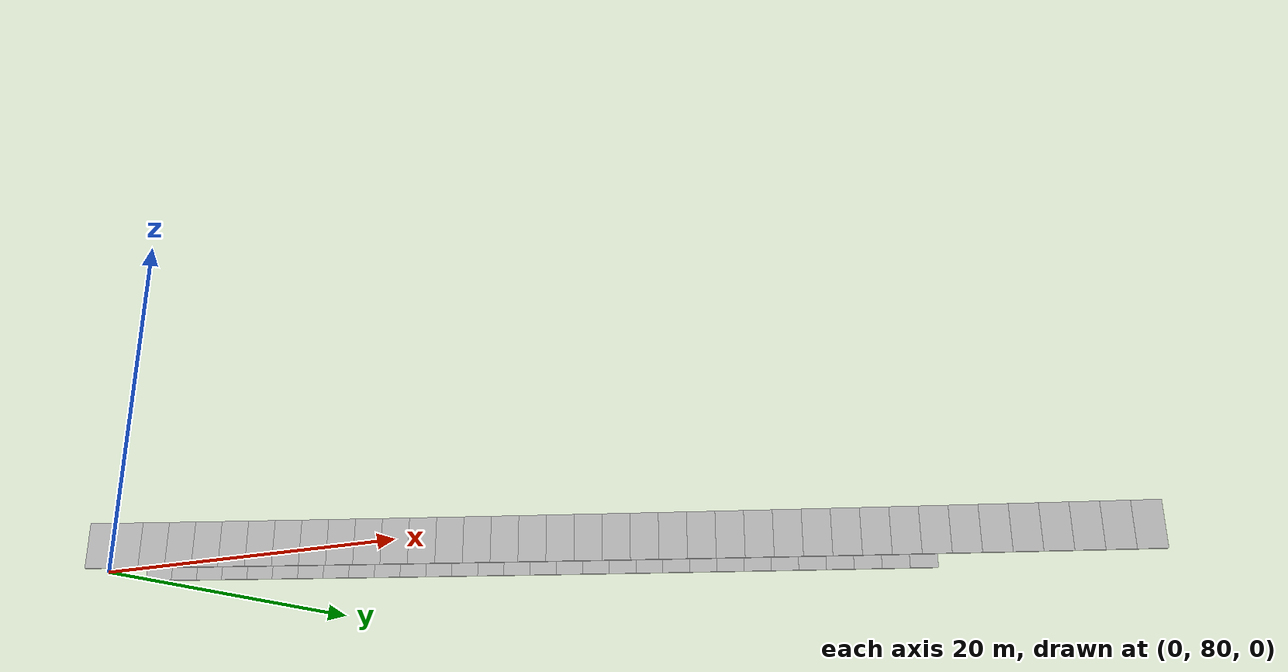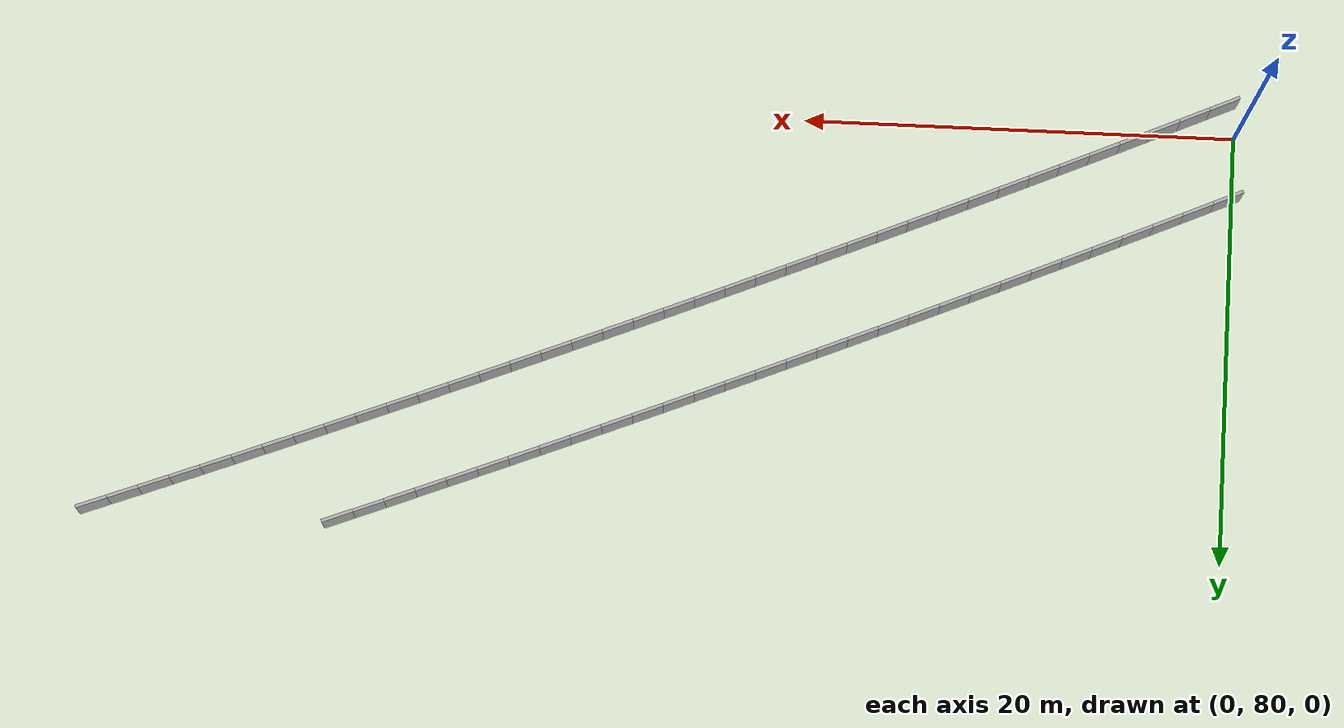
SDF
<?xml version="1.0" ?>
<sdf version="1.6">
  <model name="sps_0822">
    <pose frame="">0 0 0 0 -0 0</pose>
    <static>1</static>
    <self_collide>0</self_collide>
    <allow_auto_disable>0</allow_auto_disable>
    <link name="Wall3129">
      <kinematic>0</kinematic>
      <gravity>1</gravity>
      <self_collide>0</self_collide>
      <collision name="collision">
        <geometry>
          <box>
            <size>1.49655 0.15 2.5</size>
          </box>
        </geometry>
        <pose frame="">0 0 0 0 -0 0</pose>
      </collision>
      <visual name="visual">
        <geometry>
          <box>
            <size>1.49655 0.15 2.5</size>
          </box>
        </geometry>
        <pose frame="">0 0 0 0 -0 0</pose>
        <cast_shadows>1</cast_shadows>
        <transparency>0.0</transparency>
      </visual>
      <pose frame="">51.9383 99.6249 1.25 0 0 -2.78419</pose>
    </link>
    <link name="Wall3130">
      <kinematic>0</kinematic>
      <gravity>1</gravity>
      <self_collide>0</self_collide>
      <collision name="collision">
        <geometry>
          <box>
            <size>1.49643 0.15 2.5</size>
          </box>
        </geometry>
        <pose frame="">0 0 0 0 -0 0</pose>
      </collision>
      <visual name="visual">
        <geometry>
          <box>
            <size>1.49643 0.15 2.5</size>
          </box>
        </geometry>
        <pose frame="">0 0 0 0 -0 0</pose>
        <cast_shadows>1</cast_shadows>
        <transparency>0.0</transparency>
      </visual>
      <pose frame="">50.5368 99.1002 1.25 0 0 -2.78255</pose>
    </link>
    <link name="Wall3131">
      <kinematic>0</kinematic>
      <gravity>1</gravity>
      <self_collide>0</self_collide>
      <collision name="collision">
        <geometry>
          <box>
            <size>1.49646 0.15 2.5</size>
          </box>
        </geometry>
        <pose frame="">0 0 0 0 -0 0</pose>
      </collision>
      <visual name="visual">
        <geometry>
          <box>
            <size>1.49646 0.15 2.5</size>
          </box>
        </geometry>
        <pose frame="">0 0 0 0 -0 0</pose>
        <cast_shadows>1</cast_shadows>
        <transparency>0.0</transparency>
      </visual>
      <pose frame="">49.1362 98.5733 1.25 0 0 -2.78098</pose>
    </link>
    <link name="Wall3132">
      <kinematic>0</kinematic>
      <gravity>1</gravity>
      <self_collide>0</self_collide>
      <collision name="collision">
        <geometry>
          <box>
            <size>1.49649 0.15 2.5</size>
          </box>
        </geometry>
        <pose frame="">0 0 0 0 -0 0</pose>
      </collision>
      <visual name="visual">
        <geometry>
          <box>
            <size>1.49649 0.15 2.5</size>
          </box>
        </geometry>
        <pose frame="">0 0 0 0 -0 0</pose>
        <cast_shadows>1</cast_shadows>
        <transparency>0.0</transparency>
      </visual>
      <pose frame="">47.7364 98.0442 1.25 0 0 -2.77942</pose>
    </link>
    <link name="Wall3133">
      <kinematic>0</kinematic>
      <gravity>1</gravity>
      <self_collide>0</self_collide>
      <collision name="collision">
        <geometry>
          <box>
            <size>1.49645 0.15 2.5</size>
          </box>
        </geometry>
        <pose frame="">0 0 0 0 -0 0</pose>
      </collision>
      <visual name="visual">
        <geometry>
          <box>
            <size>1.49645 0.15 2.5</size>
          </box>
        </geometry>
        <pose frame="">0 0 0 0 -0 0</pose>
        <cast_shadows>1</cast_shadows>
        <transparency>0.0</transparency>
      </visual>
      <pose frame="">46.3374 97.5129 1.25 0 0 -2.77789</pose>
    </link>
    <link name="Wall3134">
      <kinematic>0</kinematic>
      <gravity>1</gravity>
      <self_collide>0</self_collide>
      <collision name="collision">
        <geometry>
          <box>
            <size>1.49657 0.15 2.5</size>
          </box>
        </geometry>
        <pose frame="">0 0 0 0 -0 0</pose>
      </collision>
      <visual name="visual">
        <geometry>
          <box>
            <size>1.49657 0.15 2.5</size>
          </box>
        </geometry>
        <pose frame="">0 0 0 0 -0 0</pose>
        <cast_shadows>1</cast_shadows>
        <transparency>0.0</transparency>
      </visual>
      <pose frame="">44.9392 96.9794 1.25 0 0 -2.7763</pose>
    </link>
    <link name="Wall3135">
      <kinematic>0</kinematic>
      <gravity>1</gravity>
      <self_collide>0</self_collide>
      <collision name="collision">
        <geometry>
          <box>
            <size>1.49665 0.15 2.5</size>
          </box>
        </geometry>
        <pose frame="">0 0 0 0 -0 0</pose>
      </collision>
      <visual name="visual">
        <geometry>
          <box>
            <size>1.49665 0.15 2.5</size>
          </box>
        </geometry>
        <pose frame="">0 0 0 0 -0 0</pose>
        <cast_shadows>1</cast_shadows>
        <transparency>0.0</transparency>
      </visual>
      <pose frame="">43.5418 96.4436 1.25 0 0 -2.77457</pose>
    </link>
    <link name="Wall3136">
      <kinematic>0</kinematic>
      <gravity>1</gravity>
      <self_collide>0</self_collide>
      <collision name="collision">
        <geometry>
          <box>
            <size>1.49647 0.15 2.5</size>
          </box>
        </geometry>
        <pose frame="">0 0 0 0 -0 0</pose>
      </collision>
      <visual name="visual">
        <geometry>
          <box>
            <size>1.49647 0.15 2.5</size>
          </box>
        </geometry>
        <pose frame="">0 0 0 0 -0 0</pose>
        <cast_shadows>1</cast_shadows>
        <transparency>0.0</transparency>
      </visual>
      <pose frame="">42.1453 95.9056 1.25 0 0 -2.77317</pose>
    </link>
    <link name="Wall3137">
      <kinematic>0</kinematic>
      <gravity>1</gravity>
      <self_collide>0</self_collide>
      <collision name="collision">
        <geometry>
          <box>
            <size>1.49652 0.15 2.5</size>
          </box>
        </geometry>
        <pose frame="">0 0 0 0 -0 0</pose>
      </collision>
      <visual name="visual">
        <geometry>
          <box>
            <size>1.49652 0.15 2.5</size>
          </box>
        </geometry>
        <pose frame="">0 0 0 0 -0 0</pose>
        <cast_shadows>1</cast_shadows>
        <transparency>0.0</transparency>
      </visual>
      <pose frame="">40.7497 95.3654 1.25 0 0 -2.77139</pose>
    </link>
    <link name="Wall3138">
      <kinematic>0</kinematic>
      <gravity>1</gravity>
      <self_collide>0</self_collide>
      <collision name="collision">
        <geometry>
          <box>
            <size>1.49655 0.15 2.5</size>
          </box>
        </geometry>
        <pose frame="">0 0 0 0 -0 0</pose>
      </collision>
      <visual name="visual">
        <geometry>
          <box>
            <size>1.49655 0.15 2.5</size>
          </box>
        </geometry>
        <pose frame="">0 0 0 0 -0 0</pose>
        <cast_shadows>1</cast_shadows>
        <transparency>0.0</transparency>
      </visual>
      <pose frame="">39.3549 94.823 1.25 0 0 -2.77</pose>
    </link>
    <link name="Wall3139">
      <kinematic>0</kinematic>
      <gravity>1</gravity>
      <self_collide>0</self_collide>
      <collision name="collision">
        <geometry>
          <box>
            <size>1.49644 0.15 2.5</size>
          </box>
        </geometry>
        <pose frame="">0 0 0 0 -0 0</pose>
      </collision>
      <visual name="visual">
        <geometry>
          <box>
            <size>1.49644 0.15 2.5</size>
          </box>
        </geometry>
        <pose frame="">0 0 0 0 -0 0</pose>
        <cast_shadows>1</cast_shadows>
        <transparency>0.0</transparency>
      </visual>
      <pose frame="">37.961 94.2785 1.25 0 0 -2.7684</pose>
    </link>
    <link name="Wall3140">
      <kinematic>0</kinematic>
      <gravity>1</gravity>
      <self_collide>0</self_collide>
      <collision name="collision">
        <geometry>
          <box>
            <size>1.49651 0.15 2.5</size>
          </box>
        </geometry>
        <pose frame="">0 0 0 0 -0 0</pose>
      </collision>
      <visual name="visual">
        <geometry>
          <box>
            <size>1.49651 0.15 2.5</size>
          </box>
        </geometry>
        <pose frame="">0 0 0 0 -0 0</pose>
        <cast_shadows>1</cast_shadows>
        <transparency>0.0</transparency>
      </visual>
      <pose frame="">36.568 93.7317 1.25 0 0 -2.76671</pose>
    </link>
    <link name="Wall3141">
      <kinematic>0</kinematic>
      <gravity>1</gravity>
      <self_collide>0</self_collide>
      <collision name="collision">
        <geometry>
          <box>
            <size>1.49645 0.15 2.5</size>
          </box>
        </geometry>
        <pose frame="">0 0 0 0 -0 0</pose>
      </collision>
      <visual name="visual">
        <geometry>
          <box>
            <size>1.49645 0.15 2.5</size>
          </box>
        </geometry>
        <pose frame="">0 0 0 0 -0 0</pose>
        <cast_shadows>1</cast_shadows>
        <transparency>0.0</transparency>
      </visual>
      <pose frame="">35.1758 93.1828 1.25 0 0 -2.76537</pose>
    </link>
    <link name="Wall3142">
      <kinematic>0</kinematic>
      <gravity>1</gravity>
      <self_collide>0</self_collide>
      <collision name="collision">
        <geometry>
          <box>
            <size>1.4965 0.15 2.5</size>
          </box>
        </geometry>
        <pose frame="">0 0 0 0 -0 0</pose>
      </collision>
      <visual name="visual">
        <geometry>
          <box>
            <size>1.4965 0.15 2.5</size>
          </box>
        </geometry>
        <pose frame="">0 0 0 0 -0 0</pose>
        <cast_shadows>1</cast_shadows>
        <transparency>0.0</transparency>
      </visual>
      <pose frame="">33.7845 92.6317 1.25 0 0 -2.7635</pose>
    </link>
    <link name="Wall3143">
      <kinematic>0</kinematic>
      <gravity>1</gravity>
      <self_collide>0</self_collide>
      <collision name="collision">
        <geometry>
          <box>
            <size>1.49656 0.15 2.5</size>
          </box>
        </geometry>
        <pose frame="">0 0 0 0 -0 0</pose>
      </collision>
      <visual name="visual">
        <geometry>
          <box>
            <size>1.49656 0.15 2.5</size>
          </box>
        </geometry>
        <pose frame="">0 0 0 0 -0 0</pose>
        <cast_shadows>1</cast_shadows>
        <transparency>0.0</transparency>
      </visual>
      <pose frame="">32.3941 92.0782 1.25 0 0 -2.76198</pose>
    </link>
    <link name="Wall3144">
      <kinematic>0</kinematic>
      <gravity>1</gravity>
      <self_collide>0</self_collide>
      <collision name="collision">
        <geometry>
          <box>
            <size>1.49636 0.15 2.5</size>
          </box>
        </geometry>
        <pose frame="">0 0 0 0 -0 0</pose>
      </collision>
      <visual name="visual">
        <geometry>
          <box>
            <size>1.49636 0.15 2.5</size>
          </box>
        </geometry>
        <pose frame="">0 0 0 0 -0 0</pose>
        <cast_shadows>1</cast_shadows>
        <transparency>0.0</transparency>
      </visual>
      <pose frame="">31.0046 91.5226 1.25 0 0 -2.76043</pose>
    </link>
    <link name="Wall3145">
      <kinematic>0</kinematic>
      <gravity>1</gravity>
      <self_collide>0</self_collide>
      <collision name="collision">
        <geometry>
          <box>
            <size>1.49655 0.15 2.5</size>
          </box>
        </geometry>
        <pose frame="">0 0 0 0 -0 0</pose>
      </collision>
      <visual name="visual">
        <geometry>
          <box>
            <size>1.49655 0.15 2.5</size>
          </box>
        </geometry>
        <pose frame="">0 0 0 0 -0 0</pose>
        <cast_shadows>1</cast_shadows>
        <transparency>0.0</transparency>
      </visual>
      <pose frame="">29.616 90.9648 1.25 0 0 -2.75881</pose>
    </link>
    <link name="Wall3146">
      <kinematic>0</kinematic>
      <gravity>1</gravity>
      <self_collide>0</self_collide>
      <collision name="collision">
        <geometry>
          <box>
            <size>1.49653 0.15 2.5</size>
          </box>
        </geometry>
        <pose frame="">0 0 0 0 -0 0</pose>
      </collision>
      <visual name="visual">
        <geometry>
          <box>
            <size>1.49653 0.15 2.5</size>
          </box>
        </geometry>
        <pose frame="">0 0 0 0 -0 0</pose>
        <cast_shadows>1</cast_shadows>
        <transparency>0.0</transparency>
      </visual>
      <pose frame="">28.2281 90.4048 1.25 0 0 -2.75731</pose>
    </link>
    <link name="Wall3147">
      <kinematic>0</kinematic>
      <gravity>1</gravity>
      <self_collide>0</self_collide>
      <collision name="collision">
        <geometry>
          <box>
            <size>1.49643 0.15 2.5</size>
          </box>
        </geometry>
        <pose frame="">0 0 0 0 -0 0</pose>
      </collision>
      <visual name="visual">
        <geometry>
          <box>
            <size>1.49643 0.15 2.5</size>
          </box>
        </geometry>
        <pose frame="">0 0 0 0 -0 0</pose>
        <cast_shadows>1</cast_shadows>
        <transparency>0.0</transparency>
      </visual>
      <pose frame="">26.8412 89.8427 1.25 0 0 -2.75575</pose>
    </link>
    <link name="Wall3148">
      <kinematic>0</kinematic>
      <gravity>1</gravity>
      <self_collide>0</self_collide>
      <collision name="collision">
        <geometry>
          <box>
            <size>1.49656 0.15 2.5</size>
          </box>
        </geometry>
        <pose frame="">0 0 0 0 -0 0</pose>
      </collision>
      <visual name="visual">
        <geometry>
          <box>
            <size>1.49656 0.15 2.5</size>
          </box>
        </geometry>
        <pose frame="">0 0 0 0 -0 0</pose>
        <cast_shadows>1</cast_shadows>
        <transparency>0.0</transparency>
      </visual>
      <pose frame="">25.4553 89.2783 1.25 0 0 -2.75402</pose>
    </link>
    <link name="Wall3149">
      <kinematic>0</kinematic>
      <gravity>1</gravity>
      <self_collide>0</self_collide>
      <collision name="collision">
        <geometry>
          <box>
            <size>1.49654 0.15 2.5</size>
          </box>
        </geometry>
        <pose frame="">0 0 0 0 -0 0</pose>
      </collision>
      <visual name="visual">
        <geometry>
          <box>
            <size>1.49654 0.15 2.5</size>
          </box>
        </geometry>
        <pose frame="">0 0 0 0 -0 0</pose>
        <cast_shadows>1</cast_shadows>
        <transparency>0.0</transparency>
      </visual>
      <pose frame="">24.0702 88.7116 1.25 0 0 -2.75243</pose>
    </link>
    <link name="Wall3150">
      <kinematic>0</kinematic>
      <gravity>1</gravity>
      <self_collide>0</self_collide>
      <collision name="collision">
        <geometry>
          <box>
            <size>1.49659 0.15 2.5</size>
          </box>
        </geometry>
        <pose frame="">0 0 0 0 -0 0</pose>
      </collision>
      <visual name="visual">
        <geometry>
          <box>
            <size>1.49659 0.15 2.5</size>
          </box>
        </geometry>
        <pose frame="">0 0 0 0 -0 0</pose>
        <cast_shadows>1</cast_shadows>
        <transparency>0.0</transparency>
      </visual>
      <pose frame="">22.6859 88.1427 1.25 0 0 -2.75085</pose>
    </link>
    <link name="Wall3151">
      <kinematic>0</kinematic>
      <gravity>1</gravity>
      <self_collide>0</self_collide>
      <collision name="collision">
        <geometry>
          <box>
            <size>1.49643 0.15 2.5</size>
          </box>
        </geometry>
        <pose frame="">0 0 0 0 -0 0</pose>
      </collision>
      <visual name="visual">
        <geometry>
          <box>
            <size>1.49643 0.15 2.5</size>
          </box>
        </geometry>
        <pose frame="">0 0 0 0 -0 0</pose>
        <cast_shadows>1</cast_shadows>
        <transparency>0.0</transparency>
      </visual>
      <pose frame="">21.3026 87.5717 1.25 0 0 -2.7494</pose>
    </link>
    <link name="Wall3152">
      <kinematic>0</kinematic>
      <gravity>1</gravity>
      <self_collide>0</self_collide>
      <collision name="collision">
        <geometry>
          <box>
            <size>1.49651 0.15 2.5</size>
          </box>
        </geometry>
        <pose frame="">0 0 0 0 -0 0</pose>
      </collision>
      <visual name="visual">
        <geometry>
          <box>
            <size>1.49651 0.15 2.5</size>
          </box>
        </geometry>
        <pose frame="">0 0 0 0 -0 0</pose>
        <cast_shadows>1</cast_shadows>
        <transparency>0.0</transparency>
      </visual>
      <pose frame="">19.9202 86.9986 1.25 0 0 -2.74779</pose>
    </link>
    <link name="Wall3153">
      <kinematic>0</kinematic>
      <gravity>1</gravity>
      <self_collide>0</self_collide>
      <collision name="collision">
        <geometry>
          <box>
            <size>1.49651 0.15 2.5</size>
          </box>
        </geometry>
        <pose frame="">0 0 0 0 -0 0</pose>
      </collision>
      <visual name="visual">
        <geometry>
          <box>
            <size>1.49651 0.15 2.5</size>
          </box>
        </geometry>
        <pose frame="">0 0 0 0 -0 0</pose>
        <cast_shadows>1</cast_shadows>
        <transparency>0.0</transparency>
      </visual>
      <pose frame="">18.5387 86.4233 1.25 0 0 -2.7462</pose>
    </link>
    <link name="Wall3154">
      <kinematic>0</kinematic>
      <gravity>1</gravity>
      <self_collide>0</self_collide>
      <collision name="collision">
        <geometry>
          <box>
            <size>1.49634 0.15 2.5</size>
          </box>
        </geometry>
        <pose frame="">0 0 0 0 -0 0</pose>
      </collision>
      <visual name="visual">
        <geometry>
          <box>
            <size>1.49634 0.15 2.5</size>
          </box>
        </geometry>
        <pose frame="">0 0 0 0 -0 0</pose>
        <cast_shadows>1</cast_shadows>
        <transparency>0.0</transparency>
      </visual>
      <pose frame="">17.1583 85.8458 1.25 0 0 -2.74456</pose>
    </link>
    <link name="Wall3155">
      <kinematic>0</kinematic>
      <gravity>1</gravity>
      <self_collide>0</self_collide>
      <collision name="collision">
        <geometry>
          <box>
            <size>1.49649 0.15 2.5</size>
          </box>
        </geometry>
        <pose frame="">0 0 0 0 -0 0</pose>
      </collision>
      <visual name="visual">
        <geometry>
          <box>
            <size>1.49649 0.15 2.5</size>
          </box>
        </geometry>
        <pose frame="">0 0 0 0 -0 0</pose>
        <cast_shadows>1</cast_shadows>
        <transparency>0.0</transparency>
      </visual>
      <pose frame="">15.7787 85.2661 1.25 0 0 -2.74305</pose>
    </link>
    <link name="Wall3156">
      <kinematic>0</kinematic>
      <gravity>1</gravity>
      <self_collide>0</self_collide>
      <collision name="collision">
        <geometry>
          <box>
            <size>1.49647 0.15 2.5</size>
          </box>
        </geometry>
        <pose frame="">0 0 0 0 -0 0</pose>
      </collision>
      <visual name="visual">
        <geometry>
          <box>
            <size>1.49647 0.15 2.5</size>
          </box>
        </geometry>
        <pose frame="">0 0 0 0 -0 0</pose>
        <cast_shadows>1</cast_shadows>
        <transparency>0.0</transparency>
      </visual>
      <pose frame="">14.4 84.6842 1.25 0 0 -2.74141</pose>
    </link>
    <link name="Wall3157">
      <kinematic>0</kinematic>
      <gravity>1</gravity>
      <self_collide>0</self_collide>
      <collision name="collision">
        <geometry>
          <box>
            <size>1.49654 0.15 2.5</size>
          </box>
        </geometry>
        <pose frame="">0 0 0 0 -0 0</pose>
      </collision>
      <visual name="visual">
        <geometry>
          <box>
            <size>1.49654 0.15 2.5</size>
          </box>
        </geometry>
        <pose frame="">0 0 0 0 -0 0</pose>
        <cast_shadows>1</cast_shadows>
        <transparency>0.0</transparency>
      </visual>
      <pose frame="">13.0221 84.1001 1.25 0 0 -2.73983</pose>
    </link>
    <link name="Wall3158">
      <kinematic>0</kinematic>
      <gravity>1</gravity>
      <self_collide>0</self_collide>
      <collision name="collision">
        <geometry>
          <box>
            <size>1.49643 0.15 2.5</size>
          </box>
        </geometry>
        <pose frame="">0 0 0 0 -0 0</pose>
      </collision>
      <visual name="visual">
        <geometry>
          <box>
            <size>1.49643 0.15 2.5</size>
          </box>
        </geometry>
        <pose frame="">0 0 0 0 -0 0</pose>
        <cast_shadows>1</cast_shadows>
        <transparency>0.0</transparency>
      </visual>
      <pose frame="">11.6453 83.5139 1.25 0 0 -2.73834</pose>
    </link>
    <link name="Wall3159">
      <kinematic>0</kinematic>
      <gravity>1</gravity>
      <self_collide>0</self_collide>
      <collision name="collision">
        <geometry>
          <box>
            <size>1.49664 0.15 2.5</size>
          </box>
        </geometry>
        <pose frame="">0 0 0 0 -0 0</pose>
      </collision>
      <visual name="visual">
        <geometry>
          <box>
            <size>1.49664 0.15 2.5</size>
          </box>
        </geometry>
        <pose frame="">0 0 0 0 -0 0</pose>
        <cast_shadows>1</cast_shadows>
        <transparency>0.0</transparency>
      </visual>
      <pose frame="">10.2692 82.9255 1.25 0 0 -2.73667</pose>
    </link>
    <link name="Wall3160">
      <kinematic>0</kinematic>
      <gravity>1</gravity>
      <self_collide>0</self_collide>
      <collision name="collision">
        <geometry>
          <box>
            <size>1.49631 0.15 2.5</size>
          </box>
        </geometry>
        <pose frame="">0 0 0 0 -0 0</pose>
      </collision>
      <visual name="visual">
        <geometry>
          <box>
            <size>1.49631 0.15 2.5</size>
          </box>
        </geometry>
        <pose frame="">0 0 0 0 -0 0</pose>
        <cast_shadows>1</cast_shadows>
        <transparency>0.0</transparency>
      </visual>
      <pose frame="">8.89425 82.3349 1.25 0 0 -2.73511</pose>
    </link>
    <link name="Wall3161">
      <kinematic>0</kinematic>
      <gravity>1</gravity>
      <self_collide>0</self_collide>
      <collision name="collision">
        <geometry>
          <box>
            <size>1.4967 0.15 2.5</size>
          </box>
        </geometry>
        <pose frame="">0 0 0 0 -0 0</pose>
      </collision>
      <visual name="visual">
        <geometry>
          <box>
            <size>1.4967 0.15 2.5</size>
          </box>
        </geometry>
        <pose frame="">0 0 0 0 -0 0</pose>
        <cast_shadows>1</cast_shadows>
        <transparency>0.0</transparency>
      </visual>
      <pose frame="">7.52016 81.7421 1.25 0 0 -2.73349</pose>
    </link>
    <link name="Wall3162">
      <kinematic>0</kinematic>
      <gravity>1</gravity>
      <self_collide>0</self_collide>
      <collision name="collision">
        <geometry>
          <box>
            <size>1.49643 0.15 2.5</size>
          </box>
        </geometry>
        <pose frame="">0 0 0 0 -0 0</pose>
      </collision>
      <visual name="visual">
        <geometry>
          <box>
            <size>1.49643 0.15 2.5</size>
          </box>
        </geometry>
        <pose frame="">0 0 0 0 -0 0</pose>
        <cast_shadows>1</cast_shadows>
        <transparency>0.0</transparency>
      </visual>
      <pose frame="">6.14696 81.1471 1.25 0 0 -2.73195</pose>
    </link>
    <link name="Wall3163">
      <kinematic>0</kinematic>
      <gravity>1</gravity>
      <self_collide>0</self_collide>
      <collision name="collision">
        <geometry>
          <box>
            <size>1.49665 0.15 2.5</size>
          </box>
        </geometry>
        <pose frame="">0 0 0 0 -0 0</pose>
      </collision>
      <visual name="visual">
        <geometry>
          <box>
            <size>1.49665 0.15 2.5</size>
          </box>
        </geometry>
        <pose frame="">0 0 0 0 -0 0</pose>
        <cast_shadows>1</cast_shadows>
        <transparency>0.0</transparency>
      </visual>
      <pose frame="">4.77474 80.5499 1.25 0 0 -2.73028</pose>
    </link>
    <link name="Wall3164">
      <kinematic>0</kinematic>
      <gravity>1</gravity>
      <self_collide>0</self_collide>
      <collision name="collision">
        <geometry>
          <box>
            <size>1.49629 0.15 2.5</size>
          </box>
        </geometry>
        <pose frame="">0 0 0 0 -0 0</pose>
      </collision>
      <visual name="visual">
        <geometry>
          <box>
            <size>1.49629 0.15 2.5</size>
          </box>
        </geometry>
        <pose frame="">0 0 0 0 -0 0</pose>
        <cast_shadows>1</cast_shadows>
        <transparency>0.0</transparency>
      </visual>
      <pose frame="">3.40356 79.9505 1.25 0 0 -2.7287</pose>
    </link>
    <link name="Wall3165">
      <kinematic>0</kinematic>
      <gravity>1</gravity>
      <self_collide>0</self_collide>
      <collision name="collision">
        <geometry>
          <box>
            <size>1.49657 0.15 2.5</size>
          </box>
        </geometry>
        <pose frame="">0 0 0 0 -0 0</pose>
      </collision>
      <visual name="visual">
        <geometry>
          <box>
            <size>1.49657 0.15 2.5</size>
          </box>
        </geometry>
        <pose frame="">0 0 0 0 -0 0</pose>
        <cast_shadows>1</cast_shadows>
        <transparency>0.0</transparency>
      </visual>
      <pose frame="">2.03338 79.3489 1.25 0 0 -2.72705</pose>
    </link>
    <link name="Wall3166">
      <kinematic>0</kinematic>
      <gravity>1</gravity>
      <self_collide>0</self_collide>
      <collision name="collision">
        <geometry>
          <box>
            <size>1.49642 0.15 2.5</size>
          </box>
        </geometry>
        <pose frame="">0 0 0 0 -0 0</pose>
      </collision>
      <visual name="visual">
        <geometry>
          <box>
            <size>1.49642 0.15 2.5</size>
          </box>
        </geometry>
        <pose frame="">0 0 0 0 -0 0</pose>
        <cast_shadows>1</cast_shadows>
        <transparency>0.0</transparency>
      </visual>
      <pose frame="">0.664054 78.7452 1.25 0 0 -2.72566</pose>
    </link>
    <link name="Wall5747">
      <kinematic>0</kinematic>
      <gravity>1</gravity>
      <self_collide>0</self_collide>
      <collision name="collision">
        <geometry>
          <box>
            <size>1.5031 0.15 2.5</size>
          </box>
        </geometry>
        <pose frame="">0 0 0 0 -0 0</pose>
      </collision>
      <visual name="visual">
        <geometry>
          <box>
            <size>1.5031 0.15 2.5</size>
          </box>
        </geometry>
        <pose frame="">0 0 0 0 -0 0</pose>
        <cast_shadows>1</cast_shadows>
        <transparency>0.0</transparency>
      </visual>
      <pose frame="">40.6466 99.7646 1.25 0 0 -2.77314</pose>
    </link>
    <link name="Wall5748">
      <kinematic>0</kinematic>
      <gravity>1</gravity>
      <self_collide>0</self_collide>
      <collision name="collision">
        <geometry>
          <box>
            <size>1.50318 0.15 2.5</size>
          </box>
        </geometry>
        <pose frame="">0 0 0 0 -0 0</pose>
      </collision>
      <visual name="visual">
        <geometry>
          <box>
            <size>1.50318 0.15 2.5</size>
          </box>
        </geometry>
        <pose frame="">0 0 0 0 -0 0</pose>
        <cast_shadows>1</cast_shadows>
        <transparency>0.0</transparency>
      </visual>
      <pose frame="">39.2447 99.2221 1.25 0 0 -2.77154</pose>
    </link>
    <link name="Wall5749">
      <kinematic>0</kinematic>
      <gravity>1</gravity>
      <self_collide>0</self_collide>
      <collision name="collision">
        <geometry>
          <box>
            <size>1.50322 0.15 2.5</size>
          </box>
        </geometry>
        <pose frame="">0 0 0 0 -0 0</pose>
      </collision>
      <visual name="visual">
        <geometry>
          <box>
            <size>1.50322 0.15 2.5</size>
          </box>
        </geometry>
        <pose frame="">0 0 0 0 -0 0</pose>
        <cast_shadows>1</cast_shadows>
        <transparency>0.0</transparency>
      </visual>
      <pose frame="">37.8437 98.6773 1.25 0 0 -2.7699</pose>
    </link>
    <link name="Wall5750">
      <kinematic>0</kinematic>
      <gravity>1</gravity>
      <self_collide>0</self_collide>
      <collision name="collision">
        <geometry>
          <box>
            <size>1.5029 0.15 2.5</size>
          </box>
        </geometry>
        <pose frame="">0 0 0 0 -0 0</pose>
      </collision>
      <visual name="visual">
        <geometry>
          <box>
            <size>1.5029 0.15 2.5</size>
          </box>
        </geometry>
        <pose frame="">0 0 0 0 -0 0</pose>
        <cast_shadows>1</cast_shadows>
        <transparency>0.0</transparency>
      </visual>
      <pose frame="">36.4437 98.1303 1.25 0 0 -2.76833</pose>
    </link>
    <link name="Wall5751">
      <kinematic>0</kinematic>
      <gravity>1</gravity>
      <self_collide>0</self_collide>
      <collision name="collision">
        <geometry>
          <box>
            <size>1.50311 0.15 2.5</size>
          </box>
        </geometry>
        <pose frame="">0 0 0 0 -0 0</pose>
      </collision>
      <visual name="visual">
        <geometry>
          <box>
            <size>1.50311 0.15 2.5</size>
          </box>
        </geometry>
        <pose frame="">0 0 0 0 -0 0</pose>
        <cast_shadows>1</cast_shadows>
        <transparency>0.0</transparency>
      </visual>
      <pose frame="">35.0446 97.5812 1.25 0 0 -2.76686</pose>
    </link>
    <link name="Wall5752">
      <kinematic>0</kinematic>
      <gravity>1</gravity>
      <self_collide>0</self_collide>
      <collision name="collision">
        <geometry>
          <box>
            <size>1.50304 0.15 2.5</size>
          </box>
        </geometry>
        <pose frame="">0 0 0 0 -0 0</pose>
      </collision>
      <visual name="visual">
        <geometry>
          <box>
            <size>1.50304 0.15 2.5</size>
          </box>
        </geometry>
        <pose frame="">0 0 0 0 -0 0</pose>
        <cast_shadows>1</cast_shadows>
        <transparency>0.0</transparency>
      </visual>
      <pose frame="">33.6464 97.0298 1.25 0 0 -2.7651</pose>
    </link>
    <link name="Wall5753">
      <kinematic>0</kinematic>
      <gravity>1</gravity>
      <self_collide>0</self_collide>
      <collision name="collision">
        <geometry>
          <box>
            <size>1.50317 0.15 2.5</size>
          </box>
        </geometry>
        <pose frame="">0 0 0 0 -0 0</pose>
      </collision>
      <visual name="visual">
        <geometry>
          <box>
            <size>1.50317 0.15 2.5</size>
          </box>
        </geometry>
        <pose frame="">0 0 0 0 -0 0</pose>
        <cast_shadows>1</cast_shadows>
        <transparency>0.0</transparency>
      </visual>
      <pose frame="">32.249 96.4761 1.25 0 0 -2.76356</pose>
    </link>
    <link name="Wall5754">
      <kinematic>0</kinematic>
      <gravity>1</gravity>
      <self_collide>0</self_collide>
      <collision name="collision">
        <geometry>
          <box>
            <size>1.50319 0.15 2.5</size>
          </box>
        </geometry>
        <pose frame="">0 0 0 0 -0 0</pose>
      </collision>
      <visual name="visual">
        <geometry>
          <box>
            <size>1.50319 0.15 2.5</size>
          </box>
        </geometry>
        <pose frame="">0 0 0 0 -0 0</pose>
        <cast_shadows>1</cast_shadows>
        <transparency>0.0</transparency>
      </visual>
      <pose frame="">30.8523 95.9202 1.25 0 0 -2.76199</pose>
    </link>
    <link name="Wall5755">
      <kinematic>0</kinematic>
      <gravity>1</gravity>
      <self_collide>0</self_collide>
      <collision name="collision">
        <geometry>
          <box>
            <size>1.5031 0.15 2.5</size>
          </box>
        </geometry>
        <pose frame="">0 0 0 0 -0 0</pose>
      </collision>
      <visual name="visual">
        <geometry>
          <box>
            <size>1.5031 0.15 2.5</size>
          </box>
        </geometry>
        <pose frame="">0 0 0 0 -0 0</pose>
        <cast_shadows>1</cast_shadows>
        <transparency>0.0</transparency>
      </visual>
      <pose frame="">29.4567 95.3621 1.25 0 0 -2.76039</pose>
    </link>
    <link name="Wall5756">
      <kinematic>0</kinematic>
      <gravity>1</gravity>
      <self_collide>0</self_collide>
      <collision name="collision">
        <geometry>
          <box>
            <size>1.50301 0.15 2.5</size>
          </box>
        </geometry>
        <pose frame="">0 0 0 0 -0 0</pose>
      </collision>
      <visual name="visual">
        <geometry>
          <box>
            <size>1.50301 0.15 2.5</size>
          </box>
        </geometry>
        <pose frame="">0 0 0 0 -0 0</pose>
        <cast_shadows>1</cast_shadows>
        <transparency>0.0</transparency>
      </visual>
      <pose frame="">28.0619 94.8018 1.25 0 0 -2.75879</pose>
    </link>
    <link name="Wall5757">
      <kinematic>0</kinematic>
      <gravity>1</gravity>
      <self_collide>0</self_collide>
      <collision name="collision">
        <geometry>
          <box>
            <size>1.50295 0.15 2.5</size>
          </box>
        </geometry>
        <pose frame="">0 0 0 0 -0 0</pose>
      </collision>
      <visual name="visual">
        <geometry>
          <box>
            <size>1.50295 0.15 2.5</size>
          </box>
        </geometry>
        <pose frame="">0 0 0 0 -0 0</pose>
        <cast_shadows>1</cast_shadows>
        <transparency>0.0</transparency>
      </visual>
      <pose frame="">26.6681 94.2394 1.25 0 0 -2.75738</pose>
    </link>
    <link name="Wall5758">
      <kinematic>0</kinematic>
      <gravity>1</gravity>
      <self_collide>0</self_collide>
      <collision name="collision">
        <geometry>
          <box>
            <size>1.50322 0.15 2.5</size>
          </box>
        </geometry>
        <pose frame="">0 0 0 0 -0 0</pose>
      </collision>
      <visual name="visual">
        <geometry>
          <box>
            <size>1.50322 0.15 2.5</size>
          </box>
        </geometry>
        <pose frame="">0 0 0 0 -0 0</pose>
        <cast_shadows>1</cast_shadows>
        <transparency>0.0</transparency>
      </visual>
      <pose frame="">25.2752 93.6747 1.25 0 0 -2.75552</pose>
    </link>
    <link name="Wall5759">
      <kinematic>0</kinematic>
      <gravity>1</gravity>
      <self_collide>0</self_collide>
      <collision name="collision">
        <geometry>
          <box>
            <size>1.50298 0.15 2.5</size>
          </box>
        </geometry>
        <pose frame="">0 0 0 0 -0 0</pose>
      </collision>
      <visual name="visual">
        <geometry>
          <box>
            <size>1.50298 0.15 2.5</size>
          </box>
        </geometry>
        <pose frame="">0 0 0 0 -0 0</pose>
        <cast_shadows>1</cast_shadows>
        <transparency>0.0</transparency>
      </visual>
      <pose frame="">23.8831 93.1078 1.25 0 0 -2.75419</pose>
    </link>
    <link name="Wall5760">
      <kinematic>0</kinematic>
      <gravity>1</gravity>
      <self_collide>0</self_collide>
      <collision name="collision">
        <geometry>
          <box>
            <size>1.50315 0.15 2.5</size>
          </box>
        </geometry>
        <pose frame="">0 0 0 0 -0 0</pose>
      </collision>
      <visual name="visual">
        <geometry>
          <box>
            <size>1.50315 0.15 2.5</size>
          </box>
        </geometry>
        <pose frame="">0 0 0 0 -0 0</pose>
        <cast_shadows>1</cast_shadows>
        <transparency>0.0</transparency>
      </visual>
      <pose frame="">22.4919 92.5388 1.25 0 0 -2.75252</pose>
    </link>
    <link name="Wall5761">
      <kinematic>0</kinematic>
      <gravity>1</gravity>
      <self_collide>0</self_collide>
      <collision name="collision">
        <geometry>
          <box>
            <size>1.50308 0.15 2.5</size>
          </box>
        </geometry>
        <pose frame="">0 0 0 0 -0 0</pose>
      </collision>
      <visual name="visual">
        <geometry>
          <box>
            <size>1.50308 0.15 2.5</size>
          </box>
        </geometry>
        <pose frame="">0 0 0 0 -0 0</pose>
        <cast_shadows>1</cast_shadows>
        <transparency>0.0</transparency>
      </visual>
      <pose frame="">21.1016 91.9675 1.25 0 0 -2.75092</pose>
    </link>
    <link name="Wall5762">
      <kinematic>0</kinematic>
      <gravity>1</gravity>
      <self_collide>0</self_collide>
      <collision name="collision">
        <geometry>
          <box>
            <size>1.5032 0.15 2.5</size>
          </box>
        </geometry>
        <pose frame="">0 0 0 0 -0 0</pose>
      </collision>
      <visual name="visual">
        <geometry>
          <box>
            <size>1.5032 0.15 2.5</size>
          </box>
        </geometry>
        <pose frame="">0 0 0 0 -0 0</pose>
        <cast_shadows>1</cast_shadows>
        <transparency>0.0</transparency>
      </visual>
      <pose frame="">19.7121 91.3939 1.25 0 0 -2.74924</pose>
    </link>
    <link name="Wall5763">
      <kinematic>0</kinematic>
      <gravity>1</gravity>
      <self_collide>0</self_collide>
      <collision name="collision">
        <geometry>
          <box>
            <size>1.50309 0.15 2.5</size>
          </box>
        </geometry>
        <pose frame="">0 0 0 0 -0 0</pose>
      </collision>
      <visual name="visual">
        <geometry>
          <box>
            <size>1.50309 0.15 2.5</size>
          </box>
        </geometry>
        <pose frame="">0 0 0 0 -0 0</pose>
        <cast_shadows>1</cast_shadows>
        <transparency>0.0</transparency>
      </visual>
      <pose frame="">18.3237 90.8181 1.25 0 0 -2.74772</pose>
    </link>
    <link name="Wall5764">
      <kinematic>0</kinematic>
      <gravity>1</gravity>
      <self_collide>0</self_collide>
      <collision name="collision">
        <geometry>
          <box>
            <size>1.50301 0.15 2.5</size>
          </box>
        </geometry>
        <pose frame="">0 0 0 0 -0 0</pose>
      </collision>
      <visual name="visual">
        <geometry>
          <box>
            <size>1.50301 0.15 2.5</size>
          </box>
        </geometry>
        <pose frame="">0 0 0 0 -0 0</pose>
        <cast_shadows>1</cast_shadows>
        <transparency>0.0</transparency>
      </visual>
      <pose frame="">16.9361 90.2402 1.25 0 0 -2.74615</pose>
    </link>
    <link name="Wall5765">
      <kinematic>0</kinematic>
      <gravity>1</gravity>
      <self_collide>0</self_collide>
      <collision name="collision">
        <geometry>
          <box>
            <size>1.503 0.15 2.5</size>
          </box>
        </geometry>
        <pose frame="">0 0 0 0 -0 0</pose>
      </collision>
      <visual name="visual">
        <geometry>
          <box>
            <size>1.503 0.15 2.5</size>
          </box>
        </geometry>
        <pose frame="">0 0 0 0 -0 0</pose>
        <cast_shadows>1</cast_shadows>
        <transparency>0.0</transparency>
      </visual>
      <pose frame="">15.5496 89.6602 1.25 0 0 -2.7447</pose>
    </link>
    <link name="Wall5766">
      <kinematic>0</kinematic>
      <gravity>1</gravity>
      <self_collide>0</self_collide>
      <collision name="collision">
        <geometry>
          <box>
            <size>1.50305 0.15 2.5</size>
          </box>
        </geometry>
        <pose frame="">0 0 0 0 -0 0</pose>
      </collision>
      <visual name="visual">
        <geometry>
          <box>
            <size>1.50305 0.15 2.5</size>
          </box>
        </geometry>
        <pose frame="">0 0 0 0 -0 0</pose>
        <cast_shadows>1</cast_shadows>
        <transparency>0.0</transparency>
      </visual>
      <pose frame="">14.1639 89.078 1.25 0 0 -2.74295</pose>
    </link>
    <link name="Wall5767">
      <kinematic>0</kinematic>
      <gravity>1</gravity>
      <self_collide>0</self_collide>
      <collision name="collision">
        <geometry>
          <box>
            <size>1.50315 0.15 2.5</size>
          </box>
        </geometry>
        <pose frame="">0 0 0 0 -0 0</pose>
      </collision>
      <visual name="visual">
        <geometry>
          <box>
            <size>1.50315 0.15 2.5</size>
          </box>
        </geometry>
        <pose frame="">0 0 0 0 -0 0</pose>
        <cast_shadows>1</cast_shadows>
        <transparency>0.0</transparency>
      </visual>
      <pose frame="">12.7791 88.4935 1.25 0 0 -2.74144</pose>
    </link>
    <link name="Wall5768">
      <kinematic>0</kinematic>
      <gravity>1</gravity>
      <self_collide>0</self_collide>
      <collision name="collision">
        <geometry>
          <box>
            <size>1.50287 0.15 2.5</size>
          </box>
        </geometry>
        <pose frame="">0 0 0 0 -0 0</pose>
      </collision>
      <visual name="visual">
        <geometry>
          <box>
            <size>1.50287 0.15 2.5</size>
          </box>
        </geometry>
        <pose frame="">0 0 0 0 -0 0</pose>
        <cast_shadows>1</cast_shadows>
        <transparency>0.0</transparency>
      </visual>
      <pose frame="">11.3953 87.9069 1.25 0 0 -2.7399</pose>
    </link>
    <link name="Wall5769">
      <kinematic>0</kinematic>
      <gravity>1</gravity>
      <self_collide>0</self_collide>
      <collision name="collision">
        <geometry>
          <box>
            <size>1.50313 0.15 2.5</size>
          </box>
        </geometry>
        <pose frame="">0 0 0 0 -0 0</pose>
      </collision>
      <visual name="visual">
        <geometry>
          <box>
            <size>1.50313 0.15 2.5</size>
          </box>
        </geometry>
        <pose frame="">0 0 0 0 -0 0</pose>
        <cast_shadows>1</cast_shadows>
        <transparency>0.0</transparency>
      </visual>
      <pose frame="">10.0124 87.3182 1.25 0 0 -2.73834</pose>
    </link>
    <link name="Wall5770">
      <kinematic>0</kinematic>
      <gravity>1</gravity>
      <self_collide>0</self_collide>
      <collision name="collision">
        <geometry>
          <box>
            <size>1.50305 0.15 2.5</size>
          </box>
        </geometry>
        <pose frame="">0 0 0 0 -0 0</pose>
      </collision>
      <visual name="visual">
        <geometry>
          <box>
            <size>1.50305 0.15 2.5</size>
          </box>
        </geometry>
        <pose frame="">0 0 0 0 -0 0</pose>
        <cast_shadows>1</cast_shadows>
        <transparency>0.0</transparency>
      </visual>
      <pose frame="">8.63036 86.7271 1.25 0 0 -2.73651</pose>
    </link>
    <link name="Wall5771">
      <kinematic>0</kinematic>
      <gravity>1</gravity>
      <self_collide>0</self_collide>
      <collision name="collision">
        <geometry>
          <box>
            <size>1.50307 0.15 2.5</size>
          </box>
        </geometry>
        <pose frame="">0 0 0 0 -0 0</pose>
      </collision>
      <visual name="visual">
        <geometry>
          <box>
            <size>1.50307 0.15 2.5</size>
          </box>
        </geometry>
        <pose frame="">0 0 0 0 -0 0</pose>
        <cast_shadows>1</cast_shadows>
        <transparency>0.0</transparency>
      </visual>
      <pose frame="">7.24935 86.1338 1.25 0 0 -2.73514</pose>
    </link>
    <link name="Wall5772">
      <kinematic>0</kinematic>
      <gravity>1</gravity>
      <self_collide>0</self_collide>
      <collision name="collision">
        <geometry>
          <box>
            <size>1.50306 0.15 2.5</size>
          </box>
        </geometry>
        <pose frame="">0 0 0 0 -0 0</pose>
      </collision>
      <visual name="visual">
        <geometry>
          <box>
            <size>1.50306 0.15 2.5</size>
          </box>
        </geometry>
        <pose frame="">0 0 0 0 -0 0</pose>
        <cast_shadows>1</cast_shadows>
        <transparency>0.0</transparency>
      </visual>
      <pose frame="">5.86925 85.5384 1.25 0 0 -2.73342</pose>
    </link>
    <link name="Wall5773">
      <kinematic>0</kinematic>
      <gravity>1</gravity>
      <self_collide>0</self_collide>
      <collision name="collision">
        <geometry>
          <box>
            <size>1.50311 0.15 2.5</size>
          </box>
        </geometry>
        <pose frame="">0 0 0 0 -0 0</pose>
      </collision>
      <visual name="visual">
        <geometry>
          <box>
            <size>1.50311 0.15 2.5</size>
          </box>
        </geometry>
        <pose frame="">0 0 0 0 -0 0</pose>
        <cast_shadows>1</cast_shadows>
        <transparency>0.0</transparency>
      </visual>
      <pose frame="">4.49007 84.9408 1.25 0 0 -2.73201</pose>
    </link>
    <link name="Wall5774">
      <kinematic>0</kinematic>
      <gravity>1</gravity>
      <self_collide>0</self_collide>
      <collision name="collision">
        <geometry>
          <box>
            <size>1.50319 0.15 2.5</size>
          </box>
        </geometry>
        <pose frame="">0 0 0 0 -0 0</pose>
      </collision>
      <visual name="visual">
        <geometry>
          <box>
            <size>1.50319 0.15 2.5</size>
          </box>
        </geometry>
        <pose frame="">0 0 0 0 -0 0</pose>
        <cast_shadows>1</cast_shadows>
        <transparency>0.0</transparency>
      </visual>
      <pose frame="">3.11178 84.341 1.25 0 0 -2.73027</pose>
    </link>
    <link name="Wall5775">
      <kinematic>0</kinematic>
      <gravity>1</gravity>
      <self_collide>0</self_collide>
      <collision name="collision">
        <geometry>
          <box>
            <size>1.50307 0.15 2.5</size>
          </box>
        </geometry>
        <pose frame="">0 0 0 0 -0 0</pose>
      </collision>
      <visual name="visual">
        <geometry>
          <box>
            <size>1.50307 0.15 2.5</size>
          </box>
        </geometry>
        <pose frame="">0 0 0 0 -0 0</pose>
        <cast_shadows>1</cast_shadows>
        <transparency>0.0</transparency>
      </visual>
      <pose frame="">1.73446 83.739 1.25 0 0 -2.72881</pose>
    </link>
    <link name="Wall5776">
      <kinematic>0</kinematic>
      <gravity>1</gravity>
      <self_collide>0</self_collide>
      <collision name="collision">
        <geometry>
          <box>
            <size>1.50311 0.15 2.5</size>
          </box>
        </geometry>
        <pose frame="">0 0 0 0 -0 0</pose>
      </collision>
      <visual name="visual">
        <geometry>
          <box>
            <size>1.50311 0.15 2.5</size>
          </box>
        </geometry>
        <pose frame="">0 0 0 0 -0 0</pose>
        <cast_shadows>1</cast_shadows>
        <transparency>0.0</transparency>
      </visual>
      <pose frame="">0.358146 83.1348 1.25 0 0 -2.72705</pose>
    </link>
  </model>
</sdf>
